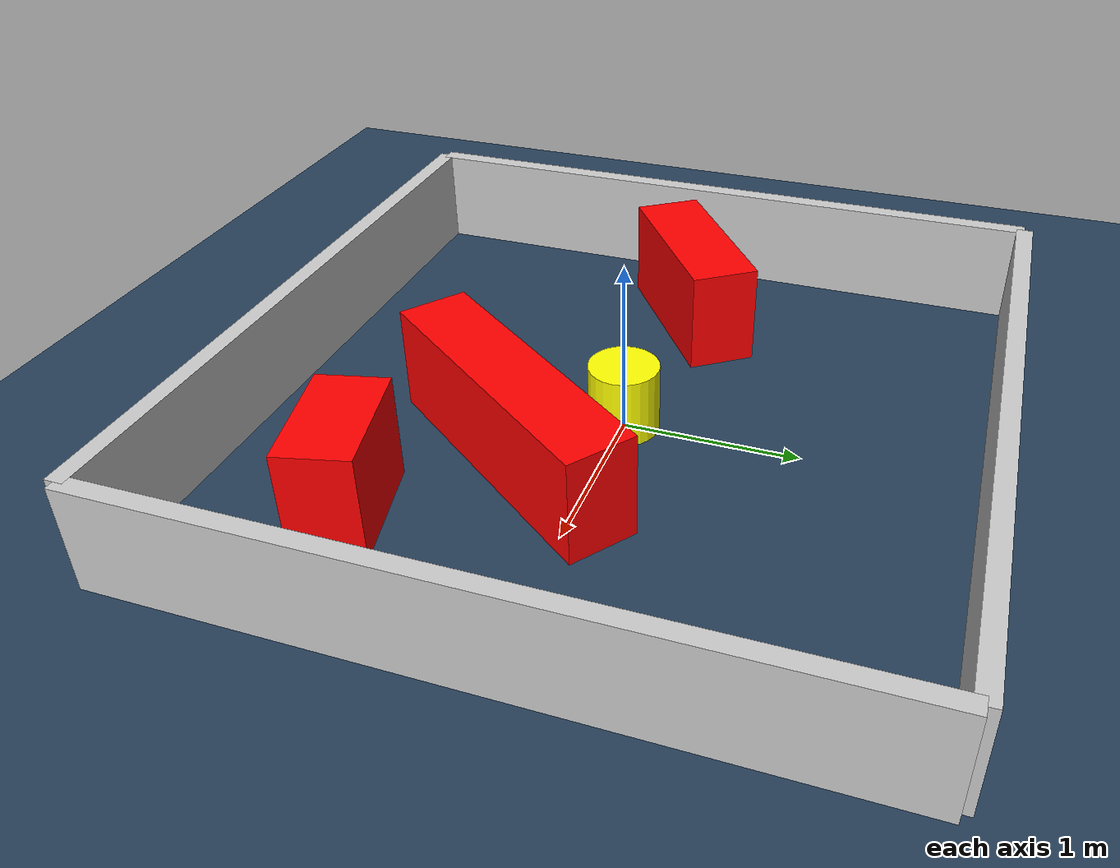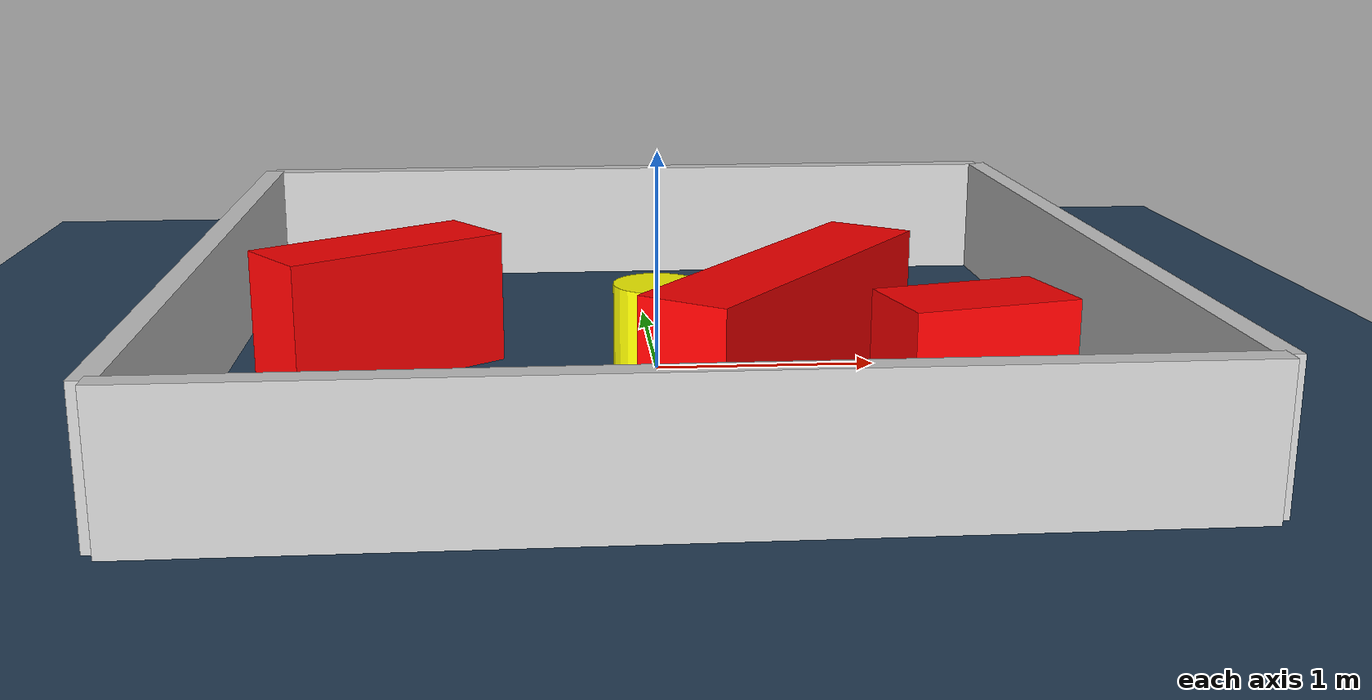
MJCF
<?xml version="1.0" ?>
<mujoco model="generated_environment">
  <option timestep="0.01" integrator="RK4" cone="elliptic"/>
  <default>
    <geom density="1"/>
  </default>
  <asset>
    <texture builtin="gradient" height="3072" rgb1="0.3 0.5 0.7" rgb2="0 0 0" type="skybox" width="512"/>
    <texture builtin="checker" height="300" mark="edge" markrgb="0.8 0.8 0.8" name="groundplane" rgb1="0.2 0.3 0.4" rgb2="0.1 0.2 0.3" type="2d" width="300"/>
    <material name="groundplane" reflectance="0.2" texrepeat="5 5" texture="groundplane" texuniform="true"/>
    <material name="robot" rgba="0.0 1.0 0.0 1"/>
  </asset>
  <worldbody>
    <light dir="0 0 -1" directional="true" pos="0 0 1.5"/>
    <geom condim="4" friction="1.0 0.005 0.001" material="groundplane" name="floor" size="0 0 0.05" type="plane"/>
    <body name="walls">
      <geom name="wall_1" condim="4" pos="-2.0 0.0 0.3" rgba="0.800000011920929 0.800000011920929 0.800000011920929 1.0" size="0.05 2.0 0.3" type="box"/>
      <geom name="wall_2" condim="4" pos="2.0 0.0 0.3" rgba="0.800000011920929 0.800000011920929 0.800000011920929 1.0" size="0.05 2.0 0.3" type="box"/>
      <geom name="wall_3" condim="4" pos="0.0 -2.0 0.3" rgba="0.800000011920929 0.800000011920929 0.800000011920929 1.0" size="2.0 0.05 0.3" type="box"/>
      <geom name="wall_4" condim="4" pos="0.0 2.0 0.3" rgba="0.800000011920929 0.800000011920929 0.800000011920929 1.0" size="2.0 0.05 0.3" type="box"/>
    </body>
    <body name="robot">
      <joint name="joint_x" type="slide" pos="0 0 0" axis="1 0 0"/>
      <joint name="joint_y" type="slide" pos="0 0 0" axis="0 1 0"/>
      <geom name="robot" type="sphere" pos="0.3 0.0 0.2" size="0.05" mass="5." friction="1.0 0.005 0.0001" condim="4" rgba="0.5 0.5 0.5 1.0"/>
      <site name="sensor_ball"/>
    </body>
    <body name="obstacle_movable_1">
      <geom name="obstacle_movable_1" condim="4" pos="0.0 0.0 0.2" euler="0 0 0.0" friction="1.0 0.005 0.001" rgba="1.0 1.0 0.0 1.0" size="0.2 0.2 0.0" type="cylinder" mass="0.1"/>
      <joint type="free"/>
    </body>
    <body name="obstacle_2_static">
      <geom name="obstacle_2_static" condim="4" pos="1.1610208548306824 -1.091185811518978 0.3" euler="0 0 193.37134565015657" friction="1.0 0.005 0.001" rgba="1 0 0 1" size="0.3482146668407893 0.2 0.3" type="box"/>
    </body>
    <body name="obstacle_3_static">
      <geom name="obstacle_3_static" condim="4" pos="-1.2499655661032898 0.05370081910652447 0.3" euler="0 0 215.31476322391876" friction="1.0 0.005 0.001" rgba="1 0 0 1" size="0.5299530619196905 0.2 0.3" type="box"/>
    </body>
    <body name="obstacle_4_static">
      <geom name="obstacle_4_static" condim="4" pos="0.5124474876084166 -0.4504076574571583 0.3" euler="0 0 233.44909021881205" friction="1.0 0.005 0.001" rgba="1 0 0 1" size="0.8508333166016893 0.2 0.3" type="box"/>
    </body>
  </worldbody>
  <actuator>
    <motor name="actuator_x" joint="joint_x" gear="1" ctrlrange="-1 1"/>
    <motor name="actuator_y" joint="joint_y" gear="1" ctrlrange="-1 1"/>
  </actuator>
</mujoco>
